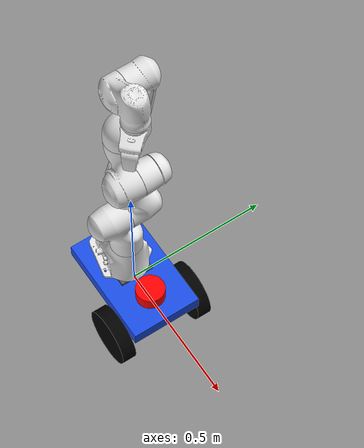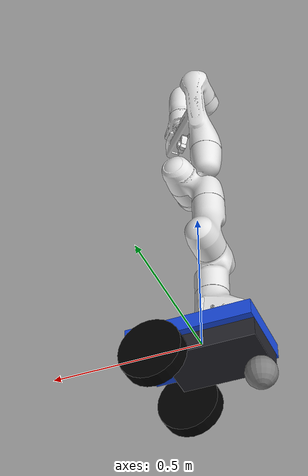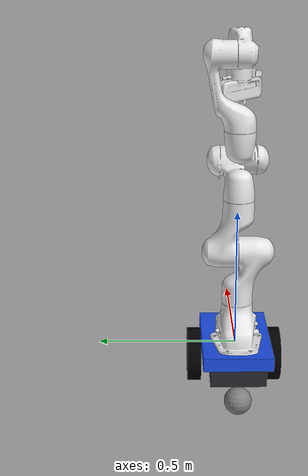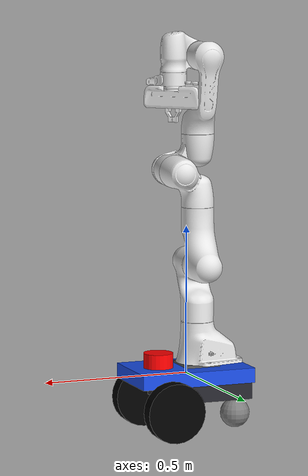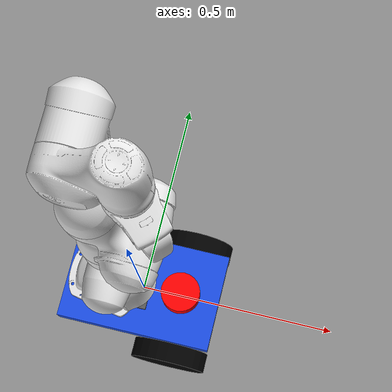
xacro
<?xml version="1.0"?>
<robot name="mobile_manipulator" xmlns:xacro="http://www.ros.org/wiki/xacro">

  <!-- ================= 1. 原有差速底盘（原样复用） ================= -->
  <xacro:include filename="$(find my_robot_sim)/urdf/my_car.urdf"/>

  <!-- ================= 2. 机械臂安装板 ================= -->
  <!-- base_link 是 0.4 x 0.25 x 0.05 的盒子，顶面在 z=+0.025。
       安装板厚 0.01，中心放在 z=0.03，顶面正好 z=0.035。
       机械臂略靠后（x=-0.04），让伸臂时的重心仍落在轮轴与万向轮之间。 -->
  <link name="arm_mount_link">
    <visual>
      <geometry><box size="0.12 0.12 0.01"/></geometry>
      <material name="mount_gray"><color rgba="0.35 0.35 0.35 1.0"/></material>
    </visual>
    <collision>
      <geometry><box size="0.12 0.12 0.01"/></geometry>
    </collision>
    <inertial>
      <mass value="0.2"/>
      <inertia ixx="0.000242" iyy="0.000242" izz="0.000480"
               ixy="0" ixz="0" iyz="0"/>
    </inertial>
  </link>
  <joint name="arm_mount_joint" type="fixed">
    <parent link="base_link"/>
    <child link="arm_mount_link"/>
    <origin xyz="-0.04 0 0.03"/>
  </joint>

  <!-- ================= 3. 底盘配重（电池包） ================= -->
  <!-- 原来的车只有约 1.6 kg，Panda 即使按 10% 质量缩放也有约 1.7 kg。
       臂伸到前方 0.5 m 时若没有配重，重心会越过驱动轮（x=+0.1）导致翻车。
       这块 2.5 kg 的电池包挂在车底，把重心拉回支撑多边形内。 -->
  <link name="ballast_link">
    <visual>
      <geometry><box size="0.30 0.20 0.06"/></geometry>
      <material name="battery_dark"><color rgba="0.15 0.15 0.18 1.0"/></material>
    </visual>
    <collision>
      <geometry><box size="0.30 0.20 0.06"/></geometry>
    </collision>
    <inertial>
      <mass value="2.5"/>
      <inertia ixx="0.009083" iyy="0.019500" izz="0.027083"
               ixy="0" ixz="0" iyz="0"/>
    </inertial>
  </link>
  <joint name="ballast_joint" type="fixed">
    <parent link="base_link"/>
    <child link="ballast_link"/>
    <!-- 车底板在 z=-0.025，电池包顶面也放在 z=-0.025 -->
    <origin xyz="-0.05 0 -0.055"/>
  </joint>

  <!-- ================= 4. Panda 机械臂（带 Gazebo 惯量） ================= -->
  <xacro:include filename="$(find my_robot_sim)/urdf/panda_with_inertia.urdf.xacro"/>

  <!-- panda_link0 原点位于臂座底面，安装板顶面是 z=0.035 -->
  <joint name="panda_base_joint" type="fixed">
    <parent link="arm_mount_link"/>
    <child link="panda_link0"/>
    <origin xyz="0 0 0.005"/>
  </joint>

  <!-- ================= 5. 腕部 RGB-D 相机 ================= -->
  <link name="camera_link">
    <visual>
      <geometry><box size="0.02 0.05 0.03"/></geometry>
      <material name="camera_dark"><color rgba="0.10 0.10 0.12 1.0"/></material>
    </visual>
    <inertial>
      <mass value="0.05"/>
      <inertia ixx="1.417e-05" iyy="5.417e-06" izz="1.208e-05"
               ixy="0" ixz="0" iyz="0"/>
    </inertial>
  </link>
  <joint name="camera_joint" type="fixed">
    <parent link="panda_hand"/>
    <child link="camera_link"/>
    <origin xyz="0 0.05 0" rpy="0 -1.5707963 0"/>
  </joint>
  <link name="camera_optical_link"/>
  <joint name="camera_optical_joint" type="fixed">
    <parent link="camera_link"/>
    <child link="camera_optical_link"/>
    <origin xyz="0 0 0" rpy="-1.5707963 0 -1.5707963"/>
  </joint>

  <gazebo reference="camera_link">
    <material>Gazebo/DarkGrey</material>
    <sensor name="arm_camera" type="depth">
      <always_on>true</always_on>
      <update_rate>30</update_rate>
      <camera>
        <horizontal_fov>1.0472</horizontal_fov>
        <image>
          <width>640</width>
          <height>480</height>
          <format>R8G8B8</format>
        </image>
        <clip>
          <near>0.02</near>
          <far>10.0</far>
        </clip>
      </camera>
      <plugin name="arm_camera_controller" filename="libgazebo_ros_camera.so">
        <camera_name>camera</camera_name>
        <frame_name>camera_optical_link</frame_name>
        <min_depth>0.02</min_depth>
        <max_depth>10.0</max_depth>
      </plugin>
    </sensor>
  </gazebo>

  <!-- ================= 6. 机械臂 ros2_control（Gazebo 硬件） ================= -->
  <!-- 只包含 Panda 的 9 个关节；轮子交给差速插件，绝不重复。 -->
  <ros2_control name="PandaGazeboSystem" type="system">
    <hardware>
      <plugin>gazebo_ros2_control/GazeboSystem</plugin>
    </hardware>

    <joint name="panda_joint1">
      <command_interface name="position"/>
      <state_interface name="position"/>
      <state_interface name="velocity"/>
    </joint>
    <joint name="panda_joint2">
      <command_interface name="position"/>
      <state_interface name="position"/>
      <state_interface name="velocity"/>
    </joint>
    <joint name="panda_joint3">
      <command_interface name="position"/>
      <state_interface name="position"/>
      <state_interface name="velocity"/>
    </joint>
    <joint name="panda_joint4">
      <command_interface name="position"/>
      <state_interface name="position"/>
      <state_interface name="velocity"/>
    </joint>
    <joint name="panda_joint5">
      <command_interface name="position"/>
      <state_interface name="position"/>
      <state_interface name="velocity"/>
    </joint>
    <joint name="panda_joint6">
      <command_interface name="position"/>
      <state_interface name="position"/>
      <state_interface name="velocity"/>
    </joint>
    <joint name="panda_joint7">
      <command_interface name="position"/>
      <state_interface name="position"/>
      <state_interface name="velocity"/>
    </joint>
    <joint name="panda_finger_joint1">
      <command_interface name="position"/>
      <command_interface name="effort"/>
      <state_interface name="position"/>
      <state_interface name="velocity"/>
    </joint>
    <joint name="panda_finger_joint2">
      <command_interface name="position"/>
      <command_interface name="effort"/>
      <state_interface name="position"/>
      <state_interface name="velocity"/>
    </joint>
  </ros2_control>

  <gazebo>
    <plugin name="ground_truth_odometry" filename="libgazebo_ros_p3d.so">
      <ros>
        <remapping>odom:=ground_truth/odom</remapping>
      </ros>
      <body_name>base_link</body_name>
      <frame_name>world</frame_name>
      <update_rate>50.0</update_rate>
      <gaussian_noise>0.0</gaussian_noise>
    </plugin>
  </gazebo>

  <gazebo>
    <plugin name="grasp_attach" filename="libgazebo_grasp_attach.so"/>
  </gazebo>

  <!-- ================= 7. 启动 Gazebo 里的 ros2_control ================= -->
  <gazebo>
    <plugin name="gazebo_ros2_control" filename="libgazebo_ros2_control.so">
      <!-- xacro 在生成 URDF 时把 $(find ...) 展开成安装目录的绝对路径 -->
      <parameters>$(find my_robot_sim)/config/mobile_manip_controllers.yaml</parameters>
      <robot_param>robot_description</robot_param>
      <robot_param_node>mobile_robot_state_publisher</robot_param_node>
    </plugin>
  </gazebo>

</robot>

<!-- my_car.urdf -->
<robot name="my_car">
  <!-- 1. 车体 -->
  <link name="base_link">
    <visual>
      <geometry><box size="0.4 0.25 0.05"/></geometry>
      <material name="blue"><color rgba="0.1 0.3 0.9 1.0"/></material>
    </visual>
    <collision>
      <geometry><box size="0.4 0.25 0.05"/></geometry>
    </collision>
    <inertial>
      <mass value="1.0"/>
      <inertia ixx="0.005417" iyy="0.013542" izz="0.018542" ixy="0" ixz="0" iyz="0"/>
    </inertial>
  </link>

  <!-- 2. 左轮
       驱动轮必须放在重心前方（x=+0.1），否则重心几乎压在轮轴线上：
       万向轮只承担 ~5% 重量，一刹车/转弯车头就栽下去且回不来。 -->
  <link name="left_wheel">
    <visual>
      <origin rpy="1.5708 0 0" xyz="0 0 0"/>
      <geometry><cylinder radius="0.1" length="0.05"/></geometry>
      <material name="black"><color rgba="0 0 0 1"/></material>
    </visual>
    <collision>
      <origin rpy="1.5708 0 0" xyz="0 0 0"/>
      <geometry><cylinder radius="0.1" length="0.05"/></geometry>
    </collision>
    <inertial>
      <mass value="0.5"/>
      <inertia ixx="0.001354" iyy="0.0025" izz="0.001354" ixy="0" ixz="0" iyz="0"/>
    </inertial>
  </link>
  <joint name="left_wheel_joint" type="continuous">
    <parent link="base_link"/>
    <child link="left_wheel"/>
    <origin xyz="0.1 0.15 -0.1"/>
    <axis xyz="0 1 0"/>
  </joint>

  <!-- 3. 右轮 -->
  <link name="right_wheel">
    <visual>
      <origin rpy="1.5708 0 0" xyz="0 0 0"/>
      <geometry><cylinder radius="0.1" length="0.05"/></geometry>
      <material name="black"><color rgba="0 0 0 1"/></material>
    </visual>
    <collision>
      <origin rpy="1.5708 0 0" xyz="0 0 0"/>
      <geometry><cylinder radius="0.1" length="0.05"/></geometry>
    </collision>
    <inertial>
      <mass value="0.5"/>
      <inertia ixx="0.001354" iyy="0.0025" izz="0.001354" ixy="0" ixz="0" iyz="0"/>
    </inertial>
  </link>
  <joint name="right_wheel_joint" type="continuous">
    <parent link="base_link"/>
    <child link="right_wheel"/>
    <origin xyz="0.1 -0.15 -0.1"/>
    <axis xyz="0 1 0"/>
  </joint>

  <!-- 4. 万向轮：Z轴改到 -0.15，保证它跟轮子一样平，不会翘头 -->
  <link name="caster_link">
    <visual>
      <geometry><sphere radius="0.05"/></geometry>
      <material name="gray"><color rgba="0.5 0.5 0.5 1"/></material>
    </visual>
    <collision>
      <geometry><sphere radius="0.05"/></geometry>
    </collision>
    <inertial>
      <mass value="0.1"/>
      <inertia ixx="0.0001" iyy="0.0001" izz="0.0001" ixy="0" ixz="0" iyz="0"/>
    </inertial>
  </link>
  <joint name="caster_joint" type="fixed">
    <parent link="base_link"/>
    <child link="caster_link"/>
    <origin xyz="-0.18 0 -0.15"/>
  </joint>

  <!-- 摩擦力与驱动 -->
  <gazebo reference="left_wheel"><mu1>10.0</mu1><mu2>10.0</mu2></gazebo>
  <gazebo reference="right_wheel"><mu1>10.0</mu1><mu2>10.0</mu2></gazebo>
  <gazebo reference="caster_link"><mu1>0.0</mu1><mu2>0.0</mu2></gazebo>

  <gazebo>
    <plugin name="diff_drive" filename="libgazebo_ros_diff_drive.so">
      <!-- 这里已经改成了 10，跟物理时钟对齐！ -->
      <update_rate>10</update_rate>
      <left_joint>left_wheel_joint</left_joint>
      <right_joint>right_wheel_joint</right_joint>
      <wheel_separation>0.3</wheel_separation>
      <wheel_diameter>0.2</wheel_diameter>
      <max_wheel_torque>50</max_wheel_torque>
      <max_wheel_acceleration>1.0</max_wheel_acceleration>
      <!-- ROS 2 版 gazebo_ros_diff_drive：publish_odom / publish_odom_tf
           默认都是 false，不显式打开就不会创建 /odom 和 odom->base_link 的 TF -->
      <publish_odom>true</publish_odom>
      <publish_odom_tf>true</publish_odom_tf>
      <odometry_source>1</odometry_source>
      <odometry_frame>odom</odometry_frame>
      <robot_base_frame>base_link</robot_base_frame>
    </plugin>
  </gazebo>

  <gazebo>
    <plugin name="joint_state_publisher" filename="libgazebo_ros_joint_state_publisher.so">
      <ros>
        <remapping>~/out:=joint_states</remapping>
      </ros>
      <update_rate>30</update_rate>
      <joint_name>left_wheel_joint</joint_name>
      <joint_name>right_wheel_joint</joint_name>
    </plugin>
  </gazebo>
  <link name="lidar_link">
    <visual>
      <geometry><cylinder radius="0.05" length="0.05"/></geometry>
      <material name="red"><color rgba="1 0 0 1"/></material>
    </visual>
    <collision>
      <geometry><cylinder radius="0.05" length="0.05"/></geometry>
    </collision>
    <inertial>
      <mass value="0.1"/>
      <inertia ixx="8.333e-05" iyy="8.333e-05" izz="1.25e-04" ixy="0" ixz="0" iyz="0"/>
    </inertial>
  </link>
  <joint name="lidar_joint" type="fixed">
    <parent link="base_link"/>
    <child link="lidar_link"/>
    <!-- 底盘顶面在 z=+0.025，雷达高 0.05，所以中心放在 z=+0.05；
         x=+0.1 是车头方向。lidar_link 的原点就是扫描平面。 -->
    <origin xyz="0.1 0 0.05"/>
  </joint>

  <!-- 2. Gazebo 雷达传感器插件（这是让雷达发数据的核心！） -->
  <gazebo reference="lidar_link">
    <sensor type="ray" name="lidar_sensor">
      <pose>0 0 0 0 0 0</pose>
      <always_on>true</always_on>
      <visualize>true</visualize>
      <update_rate>10</update_rate> <!-- 10Hz -->
      <ray>
        <scan>
          <horizontal>
            <samples>360</samples> <!-- 一圈360度 -->
            <resolution>1</resolution>
            <min_angle>-3.14</min_angle>
            <max_angle>3.14</max_angle>
          </horizontal>
        </scan>
        <range>
          <min>0.1</min>
          <max>5.0</max>
        </range>
        <noise>
          <type>gaussian</type>
          <mean>0.0</mean>
          <stddev>0.01</stddev>
        </noise>
      </ray>
      <plugin name="gazebo_ros_laser" filename="libgazebo_ros_ray_sensor.so">
        <ros>
          <remapping>~/out:=scan</remapping> <!-- 强制把它变成 /scan 话题 -->
        </ros>
        <output_type>sensor_msgs/LaserScan</output_type>
        <frame_name>lidar_link</frame_name>
      </plugin>
    </sensor>
  </gazebo>
</robot>

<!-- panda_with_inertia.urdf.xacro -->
<!-- |    This document was autogenerated by xacro from /opt/ros/kinetic/share/moveit_resources/panda_description/urdf/panda.urdf | -->
<!-- |    EDITING THIS FILE BY HAND IS NOT RECOMMENDED                                 | -->
<robot name="panda" xmlns:xacro="http://www.ros.org/wiki/xacro">
    <!-- Panda white, used by RViz and other URDF consumers. -->
    <material name="panda_body">
        <color rgba="0.9 0.9 0.9 1.0"/>
    </material>

    <xacro:macro name="panda_gazebo_material" params="link">
        <gazebo reference="${link}">
            <material>Gazebo/White</material>
        </gazebo>
    </xacro:macro>

    <xacro:macro name="panda_finger_gazebo" params="link">
        <gazebo reference="${link}">
            <material>Gazebo/White</material>
            <mu1>2.0</mu1>
            <mu2>2.0</mu2>
            <kp>1000000000.0</kp>
            <kd>1.0</kd>
            <maxVel>100.0</maxVel>
            <minDepth>0.001</minDepth>
        </gazebo>
    </xacro:macro>
    <xacro:panda_gazebo_material link="panda_link0"/>
    <xacro:panda_gazebo_material link="panda_link1"/>
    <xacro:panda_gazebo_material link="panda_link2"/>
    <xacro:panda_gazebo_material link="panda_link3"/>
    <xacro:panda_gazebo_material link="panda_link4"/>
    <xacro:panda_gazebo_material link="panda_link5"/>
    <xacro:panda_gazebo_material link="panda_link6"/>
    <xacro:panda_gazebo_material link="panda_link7"/>
    <xacro:panda_gazebo_material link="panda_hand"/>
    <xacro:panda_finger_gazebo link="panda_leftfinger"/>
    <xacro:panda_finger_gazebo link="panda_rightfinger"/>

    <link name="panda_link0">
        <inertial>
            <mass value="0.6300000"/>
            <inertia ixx="0.002000" iyy="0.002000" izz="0.002000" ixy="0.0" ixz="0.0" iyz="0.0"/>
        </inertial>
        <visual>
            <material name="panda_body"/>
            <geometry>
                <mesh filename="file://$(find moveit_resources_panda_description)/meshes/visual/link0.dae" />
            </geometry>
        </visual>
        <collision>
            <geometry>
                <mesh filename="file://$(find moveit_resources_panda_description)/meshes/collision/link0.stl" />
            </geometry>
        </collision>
    </link>
    <link name="panda_link1">
        <inertial>
            <mass value="0.4970684"/>
            <inertia ixx="0.005000" iyy="0.005000" izz="0.000900" ixy="0.0" ixz="0.0" iyz="0.0"/>
        </inertial>
        <visual>
            <material name="panda_body"/>
            <geometry>
                <mesh filename="file://$(find moveit_resources_panda_description)/meshes/visual/link1.dae" />
            </geometry>
        </visual>
        <collision>
            <geometry>
                <mesh filename="file://$(find moveit_resources_panda_description)/meshes/collision/link1.stl" />
            </geometry>
        </collision>
    </link>
    <joint name="panda_joint1" type="revolute">
        <safety_controller k_position="100.0" k_velocity="40.0" soft_lower_limit="-2.8973" soft_upper_limit="2.8973" />
        <origin rpy="0 0 0" xyz="0 0 0.333" />
        <parent link="panda_link0" />
        <child link="panda_link1" />
        <axis xyz="0 0 1" />
        <limit effort="87" lower="-2.9671" upper="2.9671" velocity="2.3925" />
    </joint>
    <link name="panda_link2">
        <inertial>
            <mass value="0.0646926"/>
            <inertia ixx="0.000600" iyy="0.000600" izz="0.000200" ixy="0.0" ixz="0.0" iyz="0.0"/>
        </inertial>
        <visual>
            <material name="panda_body"/>
            <geometry>
                <mesh filename="file://$(find moveit_resources_panda_description)/meshes/visual/link2.dae" />
            </geometry>
        </visual>
        <collision>
            <geometry>
                <mesh filename="file://$(find moveit_resources_panda_description)/meshes/collision/link2.stl" />
            </geometry>
        </collision>
    </link>
    <joint name="panda_joint2" type="revolute">
        <safety_controller k_position="100.0" k_velocity="40.0" soft_lower_limit="-1.7628" soft_upper_limit="1.7628" />
        <origin rpy="-1.57079632679 0 0" xyz="0 0 0" />
        <parent link="panda_link1" />
        <child link="panda_link2" />
        <axis xyz="0 0 1" />
        <limit effort="87" lower="-1.8326" upper="1.8326" velocity="2.3925" />
    </joint>
    <link name="panda_link3">
        <inertial>
            <mass value="0.3228604"/>
            <inertia ixx="0.002800" iyy="0.002800" izz="0.000600" ixy="0.0" ixz="0.0" iyz="0.0"/>
        </inertial>
        <visual>
            <material name="panda_body"/>
            <geometry>
                <mesh filename="file://$(find moveit_resources_panda_description)/meshes/visual/link3.dae" />
            </geometry>
        </visual>
        <collision>
            <geometry>
                <mesh filename="file://$(find moveit_resources_panda_description)/meshes/collision/link3.stl" />
            </geometry>
        </collision>
    </link>
    <joint name="panda_joint3" type="revolute">
        <safety_controller k_position="100.0" k_velocity="40.0" soft_lower_limit="-2.8973" soft_upper_limit="2.8973" />
        <origin rpy="1.57079632679 0 0" xyz="0 -0.316 0" />
        <parent link="panda_link2" />
        <child link="panda_link3" />
        <axis xyz="0 0 1" />
        <limit effort="87" lower="-2.9671" upper="2.9671" velocity="2.3925" />
    </joint>
    <link name="panda_link4">
        <inertial>
            <mass value="0.3587895"/>
            <inertia ixx="0.003000" iyy="0.003000" izz="0.000600" ixy="0.0" ixz="0.0" iyz="0.0"/>
        </inertial>
        <visual>
            <material name="panda_body"/>
            <geometry>
                <mesh filename="file://$(find moveit_resources_panda_description)/meshes/visual/link4.dae" />
            </geometry>
        </visual>
        <collision>
            <geometry>
                <mesh filename="file://$(find moveit_resources_panda_description)/meshes/collision/link4.stl" />
            </geometry>
        </collision>
    </link>
    <joint name="panda_joint4" type="revolute">
        <safety_controller k_position="100.0" k_velocity="40.0" soft_lower_limit="-3.0718" soft_upper_limit="0.0175" />
        <origin rpy="1.57079632679 0 0" xyz="0.0825 0 0" />
        <parent link="panda_link3" />
        <child link="panda_link4" />
        <axis xyz="0 0 1" />
        <limit effort="87" lower="-3.1416" upper="0.0873" velocity="2.3925" />
    </joint>
    <link name="panda_link5">
        <inertial>
            <mass value="0.1225946"/>
            <inertia ixx="0.001200" iyy="0.001200" izz="0.000300" ixy="0.0" ixz="0.0" iyz="0.0"/>
        </inertial>
        <visual>
            <material name="panda_body"/>
            <geometry>
                <mesh filename="file://$(find moveit_resources_panda_description)/meshes/visual/link5.dae" />
            </geometry>
        </visual>
        <collision>
            <geometry>
                <mesh filename="file://$(find moveit_resources_panda_description)/meshes/collision/link5.stl" />
            </geometry>
        </collision>
    </link>
    <joint name="panda_joint5" type="revolute">
        <safety_controller k_position="100.0" k_velocity="40.0" soft_lower_limit="-2.8973" soft_upper_limit="2.8973" />
        <origin rpy="-1.57079632679 0 0" xyz="-0.0825 0.384 0" />
        <parent link="panda_link4" />
        <child link="panda_link5" />
        <axis xyz="0 0 1" />
        <limit effort="12" lower="-2.9671" upper="2.9671" velocity="2.8710" />
    </joint>
    <link name="panda_link6">
        <inertial>
            <mass value="0.1666555"/>
            <inertia ixx="0.001000" iyy="0.001000" izz="0.000200" ixy="0.0" ixz="0.0" iyz="0.0"/>
        </inertial>
        <visual>
            <material name="panda_body"/>
            <geometry>
                <mesh filename="file://$(find moveit_resources_panda_description)/meshes/visual/link6.dae" />
            </geometry>
        </visual>
        <collision>
            <geometry>
                <mesh filename="file://$(find moveit_resources_panda_description)/meshes/collision/link6.stl" />
            </geometry>
        </collision>
    </link>
    <joint name="panda_joint6" type="revolute">
        <safety_controller k_position="100.0" k_velocity="40.0" soft_lower_limit="-0.0175" soft_upper_limit="3.7525" />
        <origin rpy="1.57079632679 0 0" xyz="0 0 0" />
        <parent link="panda_link5" />
        <child link="panda_link6" />
        <axis xyz="0 0 1" />
        <limit effort="12" lower="-0.0873" upper="3.8223" velocity="2.8710" />
    </joint>
    <link name="panda_link7">
        <inertial>
            <mass value="0.0735522"/>
            <inertia ixx="0.000600" iyy="0.000600" izz="0.000200" ixy="0.0" ixz="0.0" iyz="0.0"/>
        </inertial>
        <visual>
            <material name="panda_body"/>
            <geometry>
                <mesh filename="file://$(find moveit_resources_panda_description)/meshes/visual/link7.dae" />
            </geometry>
        </visual>
        <collision>
            <geometry>
                <mesh filename="file://$(find moveit_resources_panda_description)/meshes/collision/link7.stl" />
            </geometry>
        </collision>
    </link>
    <joint name="panda_joint7" type="revolute">
        <safety_controller k_position="100.0" k_velocity="40.0" soft_lower_limit="-2.8973" soft_upper_limit="2.8973" />
        <origin rpy="1.57079632679 0 0" xyz="0.088 0 0" />
        <parent link="panda_link6" />
        <child link="panda_link7" />
        <axis xyz="0 0 1" />
        <limit effort="12" lower="-2.9671" upper="2.9671" velocity="2.8710" />
    </joint>
    <link name="panda_link8" />
    <joint name="panda_joint8" type="fixed">
        <origin rpy="0 0 0" xyz="0 0 0.107" />
        <parent link="panda_link7" />
        <child link="panda_link8" />
        <axis xyz="0 0 0" />
    </joint>
    <joint name="panda_hand_joint" type="fixed">
        <parent link="panda_link8" />
        <child link="panda_hand" />
        <origin rpy="0 0 -0.785398163397" xyz="0 0 0" />
    </joint>
    <link name="panda_hand">
        <inertial>
            <mass value="0.0730000"/>
            <inertia ixx="0.000400" iyy="0.000400" izz="0.000200" ixy="0.0" ixz="0.0" iyz="0.0"/>
        </inertial>
        <visual>
            <material name="panda_body"/>
            <geometry>
                <mesh filename="file://$(find moveit_resources_panda_description)/meshes/visual/hand.dae" />
            </geometry>
        </visual>
        <collision>
            <geometry>
                <mesh filename="file://$(find moveit_resources_panda_description)/meshes/collision/hand.stl" />
            </geometry>
        </collision>
    </link>
    <link name="panda_leftfinger">
        <inertial>
            <mass value="0.0015000"/>
            <inertia ixx="0.000020" iyy="0.000020" izz="0.000020" ixy="0.0" ixz="0.0" iyz="0.0"/>
        </inertial>
        <visual>
            <material name="panda_body"/>
            <geometry>
                <mesh filename="file://$(find moveit_resources_panda_description)/meshes/visual/finger.dae" />
            </geometry>
        </visual>
        <collision>
            <origin rpy="0 0 0" xyz="0 0.01315 0.0269" />
            <geometry>
                <box size="0.040 0.0265 0.0538" />
            </geometry>
        </collision>
    </link>
    <link name="panda_rightfinger">
        <inertial>
            <mass value="0.0015000"/>
            <inertia ixx="0.000020" iyy="0.000020" izz="0.000020" ixy="0.0" ixz="0.0" iyz="0.0"/>
        </inertial>
        <visual>
            <origin rpy="0 0 3.14159265359" xyz="0 0 0" />
            <material name="panda_body"/>
            <geometry>
                <mesh filename="file://$(find moveit_resources_panda_description)/meshes/visual/finger.dae" />
            </geometry>
        </visual>
        <collision>
            <origin rpy="0 0 0" xyz="0 -0.01315 0.0269" />
            <geometry>
                <box size="0.040 0.0265 0.0538" />
            </geometry>
        </collision>
    </link>
    <joint name="panda_finger_joint1" type="prismatic">
        <parent link="panda_hand" />
        <child link="panda_leftfinger" />
        <origin rpy="0 0 0" xyz="0 0 0.0584" />
        <axis xyz="0 1 0" />
        <limit effort="20" lower="0.0" upper="0.04" velocity="0.2" />
        <dynamics damping="1.0" friction="1.0" />
    </joint>
    <joint name="panda_finger_joint2" type="prismatic">
        <parent link="panda_hand" />
        <child link="panda_rightfinger" />
        <origin rpy="0 0 0" xyz="0 0 0.0584" />
        <axis xyz="0 -1 0" />
        <limit effort="20" lower="0.0" upper="0.04" velocity="0.2" />
        <dynamics damping="1.0" friction="1.0" />
    </joint>
</robot>
